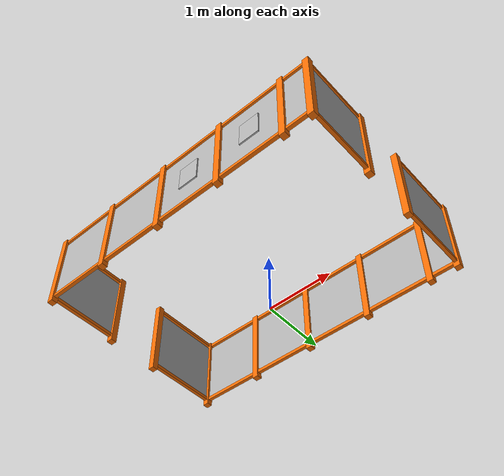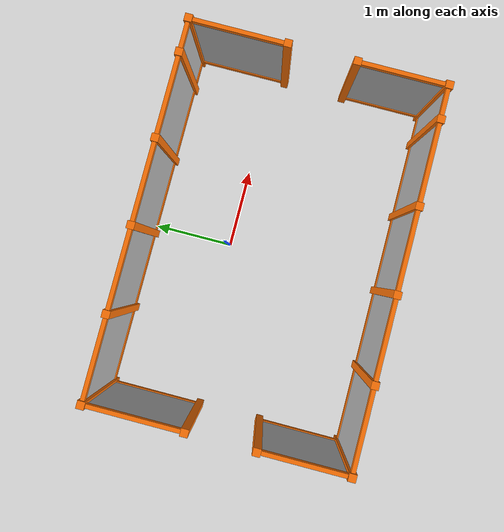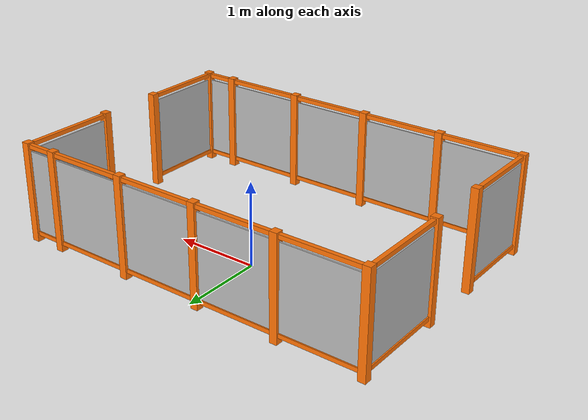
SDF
<?xml version="1.0"?>
<sdf version="1.6">
  <model name="safety_fence">
    <static>true</static>
    <link name="link">
      <visual name="post0_v">
        <pose>-2.100 -2.000 0.600 0 0 0</pose>
        <geometry><box><size>0.090 0.090 1.200</size></box></geometry>
        <material><ambient>1.0 0.45 0.02 1.0</ambient><diffuse>1.0 0.45 0.02 1.0</diffuse></material>
      </visual>
      <collision name="post0_c">
        <pose>-2.100 -2.000 0.600 0 0 0</pose>
        <geometry><box><size>0.090 0.090 1.200</size></box></geometry>
      </collision>
      <visual name="post1_v">
        <pose>-2.100 -0.950 0.600 0 0 0</pose>
        <geometry><box><size>0.090 0.090 1.200</size></box></geometry>
        <material><ambient>1.0 0.45 0.02 1.0</ambient><diffuse>1.0 0.45 0.02 1.0</diffuse></material>
      </visual>
      <collision name="post1_c">
        <pose>-2.100 -0.950 0.600 0 0 0</pose>
        <geometry><box><size>0.090 0.090 1.200</size></box></geometry>
      </collision>
      <visual name="post2_v">
        <pose>-2.100 -0.150 0.600 0 0 0</pose>
        <geometry><box><size>0.090 0.090 1.200</size></box></geometry>
        <material><ambient>1.0 0.45 0.02 1.0</ambient><diffuse>1.0 0.45 0.02 1.0</diffuse></material>
      </visual>
      <collision name="post2_c">
        <pose>-2.100 -0.150 0.600 0 0 0</pose>
        <geometry><box><size>0.090 0.090 1.200</size></box></geometry>
      </collision>
      <visual name="post3_v">
        <pose>-2.100 1.000 0.600 0 0 0</pose>
        <geometry><box><size>0.090 0.090 1.200</size></box></geometry>
        <material><ambient>1.0 0.45 0.02 1.0</ambient><diffuse>1.0 0.45 0.02 1.0</diffuse></material>
      </visual>
      <collision name="post3_c">
        <pose>-2.100 1.000 0.600 0 0 0</pose>
        <geometry><box><size>0.090 0.090 1.200</size></box></geometry>
      </collision>
      <visual name="post4_v">
        <pose>-1.100 -2.000 0.600 0 0 0</pose>
        <geometry><box><size>0.090 0.090 1.200</size></box></geometry>
        <material><ambient>1.0 0.45 0.02 1.0</ambient><diffuse>1.0 0.45 0.02 1.0</diffuse></material>
      </visual>
      <collision name="post4_c">
        <pose>-1.100 -2.000 0.600 0 0 0</pose>
        <geometry><box><size>0.090 0.090 1.200</size></box></geometry>
      </collision>
      <visual name="post5_v">
        <pose>-1.100 1.000 0.600 0 0 0</pose>
        <geometry><box><size>0.090 0.090 1.200</size></box></geometry>
        <material><ambient>1.0 0.45 0.02 1.0</ambient><diffuse>1.0 0.45 0.02 1.0</diffuse></material>
      </visual>
      <collision name="post5_c">
        <pose>-1.100 1.000 0.600 0 0 0</pose>
        <geometry><box><size>0.090 0.090 1.200</size></box></geometry>
      </collision>
      <visual name="post6_v">
        <pose>-0.100 -2.000 0.600 0 0 0</pose>
        <geometry><box><size>0.090 0.090 1.200</size></box></geometry>
        <material><ambient>1.0 0.45 0.02 1.0</ambient><diffuse>1.0 0.45 0.02 1.0</diffuse></material>
      </visual>
      <collision name="post6_c">
        <pose>-0.100 -2.000 0.600 0 0 0</pose>
        <geometry><box><size>0.090 0.090 1.200</size></box></geometry>
      </collision>
      <visual name="post7_v">
        <pose>-0.100 1.000 0.600 0 0 0</pose>
        <geometry><box><size>0.090 0.090 1.200</size></box></geometry>
        <material><ambient>1.0 0.45 0.02 1.0</ambient><diffuse>1.0 0.45 0.02 1.0</diffuse></material>
      </visual>
      <collision name="post7_c">
        <pose>-0.100 1.000 0.600 0 0 0</pose>
        <geometry><box><size>0.090 0.090 1.200</size></box></geometry>
      </collision>
      <visual name="post8_v">
        <pose>0.900 -2.000 0.600 0 0 0</pose>
        <geometry><box><size>0.090 0.090 1.200</size></box></geometry>
        <material><ambient>1.0 0.45 0.02 1.0</ambient><diffuse>1.0 0.45 0.02 1.0</diffuse></material>
      </visual>
      <collision name="post8_c">
        <pose>0.900 -2.000 0.600 0 0 0</pose>
        <geometry><box><size>0.090 0.090 1.200</size></box></geometry>
      </collision>
      <visual name="post9_v">
        <pose>0.900 1.000 0.600 0 0 0</pose>
        <geometry><box><size>0.090 0.090 1.200</size></box></geometry>
        <material><ambient>1.0 0.45 0.02 1.0</ambient><diffuse>1.0 0.45 0.02 1.0</diffuse></material>
      </visual>
      <collision name="post9_c">
        <pose>0.900 1.000 0.600 0 0 0</pose>
        <geometry><box><size>0.090 0.090 1.200</size></box></geometry>
      </collision>
      <visual name="post10_v">
        <pose>1.900 -2.000 0.600 0 0 0</pose>
        <geometry><box><size>0.090 0.090 1.200</size></box></geometry>
        <material><ambient>1.0 0.45 0.02 1.0</ambient><diffuse>1.0 0.45 0.02 1.0</diffuse></material>
      </visual>
      <collision name="post10_c">
        <pose>1.900 -2.000 0.600 0 0 0</pose>
        <geometry><box><size>0.090 0.090 1.200</size></box></geometry>
      </collision>
      <visual name="post11_v">
        <pose>1.900 1.000 0.600 0 0 0</pose>
        <geometry><box><size>0.090 0.090 1.200</size></box></geometry>
        <material><ambient>1.0 0.45 0.02 1.0</ambient><diffuse>1.0 0.45 0.02 1.0</diffuse></material>
      </visual>
      <collision name="post11_c">
        <pose>1.900 1.000 0.600 0 0 0</pose>
        <geometry><box><size>0.090 0.090 1.200</size></box></geometry>
      </collision>
      <visual name="post12_v">
        <pose>2.300 -2.000 0.600 0 0 0</pose>
        <geometry><box><size>0.090 0.090 1.200</size></box></geometry>
        <material><ambient>1.0 0.45 0.02 1.0</ambient><diffuse>1.0 0.45 0.02 1.0</diffuse></material>
      </visual>
      <collision name="post12_c">
        <pose>2.300 -2.000 0.600 0 0 0</pose>
        <geometry><box><size>0.090 0.090 1.200</size></box></geometry>
      </collision>
      <visual name="post13_v">
        <pose>2.300 -0.950 0.600 0 0 0</pose>
        <geometry><box><size>0.090 0.090 1.200</size></box></geometry>
        <material><ambient>1.0 0.45 0.02 1.0</ambient><diffuse>1.0 0.45 0.02 1.0</diffuse></material>
      </visual>
      <collision name="post13_c">
        <pose>2.300 -0.950 0.600 0 0 0</pose>
        <geometry><box><size>0.090 0.090 1.200</size></box></geometry>
      </collision>
      <visual name="post14_v">
        <pose>2.300 -0.150 0.600 0 0 0</pose>
        <geometry><box><size>0.090 0.090 1.200</size></box></geometry>
        <material><ambient>1.0 0.45 0.02 1.0</ambient><diffuse>1.0 0.45 0.02 1.0</diffuse></material>
      </visual>
      <collision name="post14_c">
        <pose>2.300 -0.150 0.600 0 0 0</pose>
        <geometry><box><size>0.090 0.090 1.200</size></box></geometry>
      </collision>
      <visual name="post15_v">
        <pose>2.300 1.000 0.600 0 0 0</pose>
        <geometry><box><size>0.090 0.090 1.200</size></box></geometry>
        <material><ambient>1.0 0.45 0.02 1.0</ambient><diffuse>1.0 0.45 0.02 1.0</diffuse></material>
      </visual>
      <collision name="post15_c">
        <pose>2.300 1.000 0.600 0 0 0</pose>
        <geometry><box><size>0.090 0.090 1.200</size></box></geometry>
      </collision>
      <visual name="n0_panel_v">
        <pose>-1.600 1.000 0.600 0 0 0</pose>
        <geometry><box><size>0.910 0.020 1.000</size></box></geometry>
        <material><script>
          <uri>model://safety_fence/materials/scripts</uri>
          <uri>model://safety_fence/materials/textures</uri>
          <name>MRF/WireMesh</name>
        </script></material>
      </visual>
      <collision name="n0_panel_c">
        <pose>-1.600 1.000 0.600 0 0 0</pose>
        <geometry><box><size>0.910 0.020 1.000</size></box></geometry>
      </collision>
      <visual name="n0_rtop_v">
        <pose>-1.600 1.000 1.160 0 0 0</pose>
        <geometry><box><size>0.910 0.050 0.050</size></box></geometry>
        <material><ambient>1.0 0.45 0.02 1.0</ambient><diffuse>1.0 0.45 0.02 1.0</diffuse></material>
      </visual>
      <visual name="n0_rbot_v">
        <pose>-1.600 1.000 0.100 0 0 0</pose>
        <geometry><box><size>0.910 0.050 0.050</size></box></geometry>
        <material><ambient>1.0 0.45 0.02 1.0</ambient><diffuse>1.0 0.45 0.02 1.0</diffuse></material>
      </visual>
      <visual name="s0_panel_v">
        <pose>-1.600 -2.000 0.600 0 0 0</pose>
        <geometry><box><size>0.910 0.020 1.000</size></box></geometry>
        <material><script>
          <uri>model://safety_fence/materials/scripts</uri>
          <uri>model://safety_fence/materials/textures</uri>
          <name>MRF/WireMesh</name>
        </script></material>
      </visual>
      <collision name="s0_panel_c">
        <pose>-1.600 -2.000 0.600 0 0 0</pose>
        <geometry><box><size>0.910 0.020 1.000</size></box></geometry>
      </collision>
      <visual name="s0_rtop_v">
        <pose>-1.600 -2.000 1.160 0 0 0</pose>
        <geometry><box><size>0.910 0.050 0.050</size></box></geometry>
        <material><ambient>1.0 0.45 0.02 1.0</ambient><diffuse>1.0 0.45 0.02 1.0</diffuse></material>
      </visual>
      <visual name="s0_rbot_v">
        <pose>-1.600 -2.000 0.100 0 0 0</pose>
        <geometry><box><size>0.910 0.050 0.050</size></box></geometry>
        <material><ambient>1.0 0.45 0.02 1.0</ambient><diffuse>1.0 0.45 0.02 1.0</diffuse></material>
      </visual>
      <visual name="n1_panel_v">
        <pose>-0.600 1.000 0.600 0 0 0</pose>
        <geometry><box><size>0.910 0.020 1.000</size></box></geometry>
        <material><script>
          <uri>model://safety_fence/materials/scripts</uri>
          <uri>model://safety_fence/materials/textures</uri>
          <name>MRF/WireMesh</name>
        </script></material>
      </visual>
      <collision name="n1_panel_c">
        <pose>-0.600 1.000 0.600 0 0 0</pose>
        <geometry><box><size>0.910 0.020 1.000</size></box></geometry>
      </collision>
      <visual name="n1_rtop_v">
        <pose>-0.600 1.000 1.160 0 0 0</pose>
        <geometry><box><size>0.910 0.050 0.050</size></box></geometry>
        <material><ambient>1.0 0.45 0.02 1.0</ambient><diffuse>1.0 0.45 0.02 1.0</diffuse></material>
      </visual>
      <visual name="n1_rbot_v">
        <pose>-0.600 1.000 0.100 0 0 0</pose>
        <geometry><box><size>0.910 0.050 0.050</size></box></geometry>
        <material><ambient>1.0 0.45 0.02 1.0</ambient><diffuse>1.0 0.45 0.02 1.0</diffuse></material>
      </visual>
      <visual name="s1_panel_v">
        <pose>-0.600 -2.000 0.600 0 0 0</pose>
        <geometry><box><size>0.910 0.020 1.000</size></box></geometry>
        <material><script>
          <uri>model://safety_fence/materials/scripts</uri>
          <uri>model://safety_fence/materials/textures</uri>
          <name>MRF/WireMesh</name>
        </script></material>
      </visual>
      <collision name="s1_panel_c">
        <pose>-0.600 -2.000 0.600 0 0 0</pose>
        <geometry><box><size>0.910 0.020 1.000</size></box></geometry>
      </collision>
      <visual name="s1_rtop_v">
        <pose>-0.600 -2.000 1.160 0 0 0</pose>
        <geometry><box><size>0.910 0.050 0.050</size></box></geometry>
        <material><ambient>1.0 0.45 0.02 1.0</ambient><diffuse>1.0 0.45 0.02 1.0</diffuse></material>
      </visual>
      <visual name="s1_rbot_v">
        <pose>-0.600 -2.000 0.100 0 0 0</pose>
        <geometry><box><size>0.910 0.050 0.050</size></box></geometry>
        <material><ambient>1.0 0.45 0.02 1.0</ambient><diffuse>1.0 0.45 0.02 1.0</diffuse></material>
      </visual>
      <visual name="n2_panel_v">
        <pose>0.400 1.000 0.600 0 0 0</pose>
        <geometry><box><size>0.910 0.020 1.000</size></box></geometry>
        <material><script>
          <uri>model://safety_fence/materials/scripts</uri>
          <uri>model://safety_fence/materials/textures</uri>
          <name>MRF/WireMesh</name>
        </script></material>
      </visual>
      <collision name="n2_panel_c">
        <pose>0.400 1.000 0.600 0 0 0</pose>
        <geometry><box><size>0.910 0.020 1.000</size></box></geometry>
      </collision>
      <visual name="n2_rtop_v">
        <pose>0.400 1.000 1.160 0 0 0</pose>
        <geometry><box><size>0.910 0.050 0.050</size></box></geometry>
        <material><ambient>1.0 0.45 0.02 1.0</ambient><diffuse>1.0 0.45 0.02 1.0</diffuse></material>
      </visual>
      <visual name="n2_rbot_v">
        <pose>0.400 1.000 0.100 0 0 0</pose>
        <geometry><box><size>0.910 0.050 0.050</size></box></geometry>
        <material><ambient>1.0 0.45 0.02 1.0</ambient><diffuse>1.0 0.45 0.02 1.0</diffuse></material>
      </visual>
      <visual name="s2_panel_v">
        <pose>0.400 -2.000 0.600 0 0 0</pose>
        <geometry><box><size>0.910 0.020 1.000</size></box></geometry>
        <material><script>
          <uri>model://safety_fence/materials/scripts</uri>
          <uri>model://safety_fence/materials/textures</uri>
          <name>MRF/WireMesh</name>
        </script></material>
      </visual>
      <collision name="s2_panel_c">
        <pose>0.400 -2.000 0.600 0 0 0</pose>
        <geometry><box><size>0.910 0.020 1.000</size></box></geometry>
      </collision>
      <visual name="s2_rtop_v">
        <pose>0.400 -2.000 1.160 0 0 0</pose>
        <geometry><box><size>0.910 0.050 0.050</size></box></geometry>
        <material><ambient>1.0 0.45 0.02 1.0</ambient><diffuse>1.0 0.45 0.02 1.0</diffuse></material>
      </visual>
      <visual name="s2_rbot_v">
        <pose>0.400 -2.000 0.100 0 0 0</pose>
        <geometry><box><size>0.910 0.050 0.050</size></box></geometry>
        <material><ambient>1.0 0.45 0.02 1.0</ambient><diffuse>1.0 0.45 0.02 1.0</diffuse></material>
      </visual>
      <visual name="n3_panel_v">
        <pose>1.400 1.000 0.600 0 0 0</pose>
        <geometry><box><size>0.910 0.020 1.000</size></box></geometry>
        <material><script>
          <uri>model://safety_fence/materials/scripts</uri>
          <uri>model://safety_fence/materials/textures</uri>
          <name>MRF/WireMesh</name>
        </script></material>
      </visual>
      <collision name="n3_panel_c">
        <pose>1.400 1.000 0.600 0 0 0</pose>
        <geometry><box><size>0.910 0.020 1.000</size></box></geometry>
      </collision>
      <visual name="n3_rtop_v">
        <pose>1.400 1.000 1.160 0 0 0</pose>
        <geometry><box><size>0.910 0.050 0.050</size></box></geometry>
        <material><ambient>1.0 0.45 0.02 1.0</ambient><diffuse>1.0 0.45 0.02 1.0</diffuse></material>
      </visual>
      <visual name="n3_rbot_v">
        <pose>1.400 1.000 0.100 0 0 0</pose>
        <geometry><box><size>0.910 0.050 0.050</size></box></geometry>
        <material><ambient>1.0 0.45 0.02 1.0</ambient><diffuse>1.0 0.45 0.02 1.0</diffuse></material>
      </visual>
      <visual name="s3_panel_v">
        <pose>1.400 -2.000 0.600 0 0 0</pose>
        <geometry><box><size>0.910 0.020 1.000</size></box></geometry>
        <material><script>
          <uri>model://safety_fence/materials/scripts</uri>
          <uri>model://safety_fence/materials/textures</uri>
          <name>MRF/WireMesh</name>
        </script></material>
      </visual>
      <collision name="s3_panel_c">
        <pose>1.400 -2.000 0.600 0 0 0</pose>
        <geometry><box><size>0.910 0.020 1.000</size></box></geometry>
      </collision>
      <visual name="s3_rtop_v">
        <pose>1.400 -2.000 1.160 0 0 0</pose>
        <geometry><box><size>0.910 0.050 0.050</size></box></geometry>
        <material><ambient>1.0 0.45 0.02 1.0</ambient><diffuse>1.0 0.45 0.02 1.0</diffuse></material>
      </visual>
      <visual name="s3_rbot_v">
        <pose>1.400 -2.000 0.100 0 0 0</pose>
        <geometry><box><size>0.910 0.050 0.050</size></box></geometry>
        <material><ambient>1.0 0.45 0.02 1.0</ambient><diffuse>1.0 0.45 0.02 1.0</diffuse></material>
      </visual>
      <visual name="n4_panel_v">
        <pose>2.100 1.000 0.600 0 0 0</pose>
        <geometry><box><size>0.310 0.020 1.000</size></box></geometry>
        <material><script>
          <uri>model://safety_fence/materials/scripts</uri>
          <uri>model://safety_fence/materials/textures</uri>
          <name>MRF/WireMesh</name>
        </script></material>
      </visual>
      <collision name="n4_panel_c">
        <pose>2.100 1.000 0.600 0 0 0</pose>
        <geometry><box><size>0.310 0.020 1.000</size></box></geometry>
      </collision>
      <visual name="n4_rtop_v">
        <pose>2.100 1.000 1.160 0 0 0</pose>
        <geometry><box><size>0.310 0.050 0.050</size></box></geometry>
        <material><ambient>1.0 0.45 0.02 1.0</ambient><diffuse>1.0 0.45 0.02 1.0</diffuse></material>
      </visual>
      <visual name="n4_rbot_v">
        <pose>2.100 1.000 0.100 0 0 0</pose>
        <geometry><box><size>0.310 0.050 0.050</size></box></geometry>
        <material><ambient>1.0 0.45 0.02 1.0</ambient><diffuse>1.0 0.45 0.02 1.0</diffuse></material>
      </visual>
      <visual name="s4_panel_v">
        <pose>2.100 -2.000 0.600 0 0 0</pose>
        <geometry><box><size>0.310 0.020 1.000</size></box></geometry>
        <material><script>
          <uri>model://safety_fence/materials/scripts</uri>
          <uri>model://safety_fence/materials/textures</uri>
          <name>MRF/WireMesh</name>
        </script></material>
      </visual>
      <collision name="s4_panel_c">
        <pose>2.100 -2.000 0.600 0 0 0</pose>
        <geometry><box><size>0.310 0.020 1.000</size></box></geometry>
      </collision>
      <visual name="s4_rtop_v">
        <pose>2.100 -2.000 1.160 0 0 0</pose>
        <geometry><box><size>0.310 0.050 0.050</size></box></geometry>
        <material><ambient>1.0 0.45 0.02 1.0</ambient><diffuse>1.0 0.45 0.02 1.0</diffuse></material>
      </visual>
      <visual name="s4_rbot_v">
        <pose>2.100 -2.000 0.100 0 0 0</pose>
        <geometry><box><size>0.310 0.050 0.050</size></box></geometry>
        <material><ambient>1.0 0.45 0.02 1.0</ambient><diffuse>1.0 0.45 0.02 1.0</diffuse></material>
      </visual>
      <visual name="w0_panel_v">
        <pose>-2.100 0.425 0.600 0 0 0</pose>
        <geometry><box><size>0.020 1.060 1.000</size></box></geometry>
        <material><script>
          <uri>model://safety_fence/materials/scripts</uri>
          <uri>model://safety_fence/materials/textures</uri>
          <name>MRF/WireMesh</name>
        </script></material>
      </visual>
      <collision name="w0_panel_c">
        <pose>-2.100 0.425 0.600 0 0 0</pose>
        <geometry><box><size>0.020 1.060 1.000</size></box></geometry>
      </collision>
      <visual name="w0_rtop_v">
        <pose>-2.100 0.425 1.160 0 0 0</pose>
        <geometry><box><size>0.050 1.060 0.050</size></box></geometry>
        <material><ambient>1.0 0.45 0.02 1.0</ambient><diffuse>1.0 0.45 0.02 1.0</diffuse></material>
      </visual>
      <visual name="w0_rbot_v">
        <pose>-2.100 0.425 0.100 0 0 0</pose>
        <geometry><box><size>0.050 1.060 0.050</size></box></geometry>
        <material><ambient>1.0 0.45 0.02 1.0</ambient><diffuse>1.0 0.45 0.02 1.0</diffuse></material>
      </visual>
      <visual name="e0_panel_v">
        <pose>2.300 0.425 0.600 0 0 0</pose>
        <geometry><box><size>0.020 1.060 1.000</size></box></geometry>
        <material><script>
          <uri>model://safety_fence/materials/scripts</uri>
          <uri>model://safety_fence/materials/textures</uri>
          <name>MRF/WireMesh</name>
        </script></material>
      </visual>
      <collision name="e0_panel_c">
        <pose>2.300 0.425 0.600 0 0 0</pose>
        <geometry><box><size>0.020 1.060 1.000</size></box></geometry>
      </collision>
      <visual name="e0_rtop_v">
        <pose>2.300 0.425 1.160 0 0 0</pose>
        <geometry><box><size>0.050 1.060 0.050</size></box></geometry>
        <material><ambient>1.0 0.45 0.02 1.0</ambient><diffuse>1.0 0.45 0.02 1.0</diffuse></material>
      </visual>
      <visual name="e0_rbot_v">
        <pose>2.300 0.425 0.100 0 0 0</pose>
        <geometry><box><size>0.050 1.060 0.050</size></box></geometry>
        <material><ambient>1.0 0.45 0.02 1.0</ambient><diffuse>1.0 0.45 0.02 1.0</diffuse></material>
      </visual>
      <visual name="w2_panel_v">
        <pose>-2.100 -1.475 0.600 0 0 0</pose>
        <geometry><box><size>0.020 0.960 1.000</size></box></geometry>
        <material><script>
          <uri>model://safety_fence/materials/scripts</uri>
          <uri>model://safety_fence/materials/textures</uri>
          <name>MRF/WireMesh</name>
        </script></material>
      </visual>
      <collision name="w2_panel_c">
        <pose>-2.100 -1.475 0.600 0 0 0</pose>
        <geometry><box><size>0.020 0.960 1.000</size></box></geometry>
      </collision>
      <visual name="w2_rtop_v">
        <pose>-2.100 -1.475 1.160 0 0 0</pose>
        <geometry><box><size>0.050 0.960 0.050</size></box></geometry>
        <material><ambient>1.0 0.45 0.02 1.0</ambient><diffuse>1.0 0.45 0.02 1.0</diffuse></material>
      </visual>
      <visual name="w2_rbot_v">
        <pose>-2.100 -1.475 0.100 0 0 0</pose>
        <geometry><box><size>0.050 0.960 0.050</size></box></geometry>
        <material><ambient>1.0 0.45 0.02 1.0</ambient><diffuse>1.0 0.45 0.02 1.0</diffuse></material>
      </visual>
      <visual name="e2_panel_v">
        <pose>2.300 -1.475 0.600 0 0 0</pose>
        <geometry><box><size>0.020 0.960 1.000</size></box></geometry>
        <material><script>
          <uri>model://safety_fence/materials/scripts</uri>
          <uri>model://safety_fence/materials/textures</uri>
          <name>MRF/WireMesh</name>
        </script></material>
      </visual>
      <collision name="e2_panel_c">
        <pose>2.300 -1.475 0.600 0 0 0</pose>
        <geometry><box><size>0.020 0.960 1.000</size></box></geometry>
      </collision>
      <visual name="e2_rtop_v">
        <pose>2.300 -1.475 1.160 0 0 0</pose>
        <geometry><box><size>0.050 0.960 0.050</size></box></geometry>
        <material><ambient>1.0 0.45 0.02 1.0</ambient><diffuse>1.0 0.45 0.02 1.0</diffuse></material>
      </visual>
      <visual name="e2_rbot_v">
        <pose>2.300 -1.475 0.100 0 0 0</pose>
        <geometry><box><size>0.050 0.960 0.050</size></box></geometry>
        <material><ambient>1.0 0.45 0.02 1.0</ambient><diffuse>1.0 0.45 0.02 1.0</diffuse></material>
      </visual>
      <visual name="sign1_v">
        <pose>0.400 -2.022 0.620 0 0 0</pose>
        <geometry><box><size>0.30 0.02 0.375</size></box></geometry>
        <material><script>
          <uri>model://safety_fence/materials/scripts</uri>
          <uri>model://safety_fence/materials/textures</uri>
          <name>MRF/CautionSign</name>
        </script></material>
      </visual>
      <visual name="sign2_v">
        <pose>1.400 -2.022 0.620 0 0 0</pose>
        <geometry><box><size>0.30 0.02 0.375</size></box></geometry>
        <material><script>
          <uri>model://safety_fence/materials/scripts</uri>
          <uri>model://safety_fence/materials/textures</uri>
          <name>MRF/CautionSign</name>
        </script></material>
      </visual>
    </link>
  </model>
</sdf>
